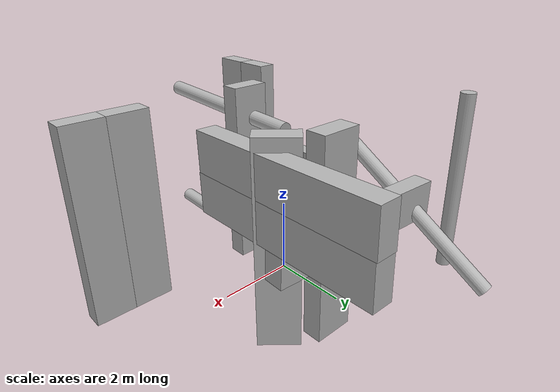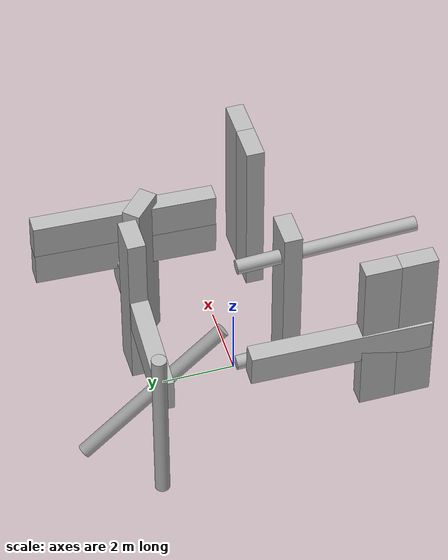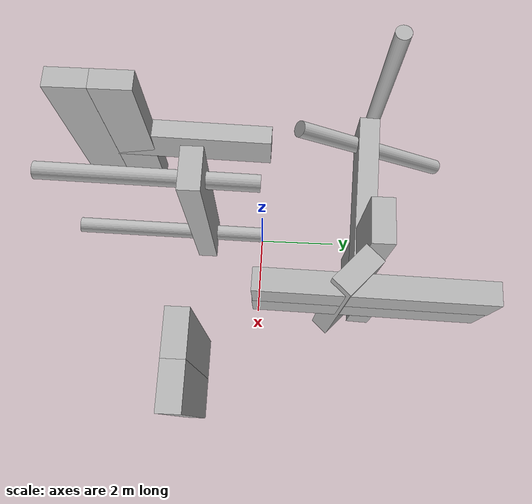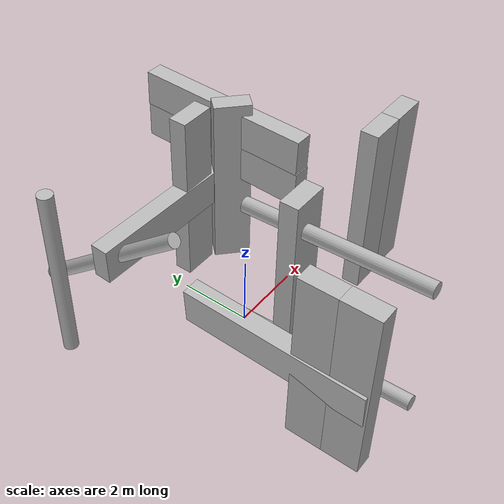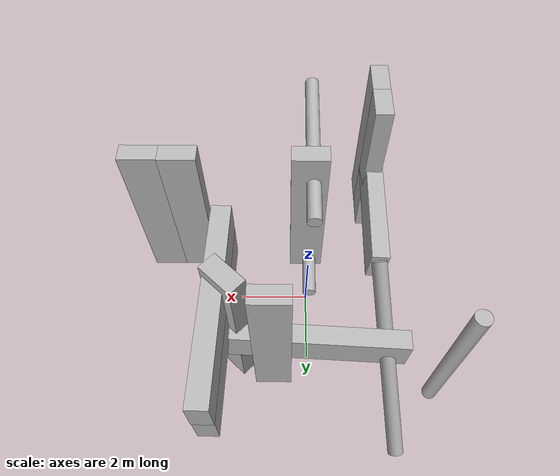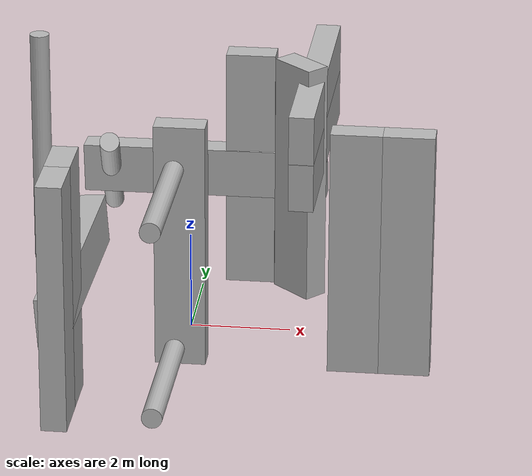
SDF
<sdf version="1.4">
 <world name="default">
  <plugin name="ros_interface_plugin" filename="librotors_gazebo_ros_interface_plugin.so"/>
  <spherical_coordinates>
   <surface_model>EARTH_WGS84</surface_model>
   <latitude_deg>47.3667</latitude_deg>
   <longitude_deg>8.5500</longitude_deg>
   <elevation>500.0</elevation>
   <heading_deg>0</heading_deg>
  </spherical_coordinates>
  <physics type="ode">
   <ode>
    <solver><type>quick</type><iters>1000</iters><sor>1.3</sor></solver>
    <constraints>
     <cfm>0</cfm>
     <erp>0.2</erp>
     <contact_max_correcting_vel>100</contact_max_correcting_vel>
     <contact_surface_layer>0.001</contact_surface_layer>
    </constraints>
   </ode>
   <max_step_size>0.01</max_step_size>
   <real_time_factor>1</real_time_factor>
   <real_time_update_rate>100</real_time_update_rate>
   <gravity>0 0 -9.8</gravity>
  </physics>
  <light type="directional" name="sun1">
   <pose>50 0 150 0 0 0</pose>
   <diffuse>1 1 1 1</diffuse>
   <specular>.1 .1 .1 1</specular>
   <direction>0.3 0.3 -1</direction>
   <cast_shadows>false</cast_shadows>
  </light>
  <light type="directional" name="sun_diffuse">
   <pose>-50 0 -150 0 0 0</pose>
   <diffuse>0.6 0.6 0.6 1</diffuse>
   <specular>0 0 0 1</specular>
   <direction>-0.3 -0.3 -1</direction>
   <cast_shadows>false</cast_shadows>
  </light>
  <scene>
   <ambient>0.01 0.01 0.01 1.0</ambient>
   <sky><clouds><speed>12</speed></clouds></sky>
   <shadows>1</shadows>
   <fog>
    <color>0.1 0.2 0.3 1.0</color>
    <type>linear</type>
    <density>0.1</density>
    <start>10</start>
    <end>40</end>
   </fog>
  </scene>
  <include><uri>model://obstacle_2</uri><pose>-2.0 -4.4 2.5 0.0 0 1.57</pose><name>obstacle_1</name></include>
  <include><uri>model://obstacle_2</uri><pose>-2.0 -3.4 2.5 0.0 0 1.57</pose><name>obstacle_2</name></include>
  <include><uri>model://obstacle_2</uri><pose>4.4 -1.5 2.5 0.0 0 0</pose><name>obstacle_3</name></include>
  <include><uri>model://obstacle_2</uri><pose>3.4 -1.5 2.5 0.0 0 0</pose><name>obstacle_4</name></include>
  <include><uri>model://obstacle_2</uri><pose>0.0 -1.5 2.5 0.0 0 0</pose><name>obstacle_5</name></include>
  <include><uri>model://obstacle_2</uri><pose>2.0 2.0 2.5 0.0 0 -0.75</pose><name>obstacle_6</name></include>
  <include><uri>model://obstacle_2</uri><pose>0.95 2.5 2.5 0.0 0 0.0</pose><name>obstacle_7</name></include>
  <include><uri>model://obstacle_3</uri><pose>-3.5 3.0 2.5 0.0 0 -0.75</pose><name>obstacle_8</name></include>
  <include><uri>model://obstacle_4</uri><pose>-2.0 2.8 2.1 0.9 0.3 -0.1</pose><name>obstacle_9</name></include>
  <include>
   <uri>model://obstacle_2</uri>
   <pose>-2.0 -2.35 2.2 -1.55 1.5 0</pose>
   <name>obstacle_10</name>
  </include>
  <include><uri>model://obstacle_2</uri><pose>2.25 2.4 3.2 0 1.55 1.55</pose><name>obstacle_11</name></include>
  <include>
   <uri>model://obstacle_4</uri>
   <pose>-0.11 -2.54 0.35 1.53 0.0 0.0</pose>
   <name>obstacle_12</name>
  </include>
  <include>
   <uri>model://obstacle_4</uri>
   <pose>-0.11 -2.54 4.15 1.53 0.0 0.0</pose>
   <name>obstacle_13</name>
  </include>
  <include><uri>model://obstacle_2</uri><pose>2.25 2.4 4.2 0 1.55 1.55</pose><name>obstacle_14</name></include>
  <include><uri>model://obstacle_2</uri><pose>0.0 2.5 2.4 -3.1 1.55 0.0</pose><name>obstacle_15</name></include>
  <plugin name="sc_interface" filename="libuuv_sc_ros_interface_plugin.so"/>
 </world>
</sdf>

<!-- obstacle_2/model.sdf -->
<sdf version="1.5">
  <model name="obstacle_2">
    <static>true</static>
    <link name="link">
      <pose>0 0 0 0 0 0</pose>
      <collision name="collision">
        <geometry>
          <box>
            <size>1.0 0.5 5.0</size>
          </box>
        </geometry>
      </collision>
      <visual name="visual">
        <geometry>
          <box>
            <size>1.0 0.5 5.0</size>
          </box>
        </geometry>
      </visual>
    </link>
  </model>
</sdf>

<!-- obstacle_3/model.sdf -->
<sdf version="1.5">
  <model name="obstacle_3">
    <static>false</static>
    <link name="link">
      <pose>0 0 0 0 0 0</pose>
      <collision name="collision">
        <geometry>
          <cylinder>
              <radius>0.2</radius>
              <length>5.0</length>
          </cylinder>
        </geometry>
      </collision>
      <visual name="visual">
        <geometry>
          <cylinder>
              <radius>0.2</radius>
              <length>5.0</length>
          </cylinder>
        </geometry>
      </visual>
    </link>
  </model>
</sdf>

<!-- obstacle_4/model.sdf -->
<sdf version="1.5">
  <model name="obstacle_4">
    <static>true</static>
    <link name="link">
      <pose>0 0 0 0 0 0</pose>
      <collision name="collision">
        <geometry>
          <cylinder>
              <radius>0.2</radius>
              <length>5.0</length>
          </cylinder>
        </geometry>
      </collision>
      <visual name="visual">
        <geometry>
          <cylinder>
              <radius>0.2</radius>
              <length>5.0</length>
          </cylinder>
        </geometry>
      </visual>
    </link>
  </model>
</sdf>
